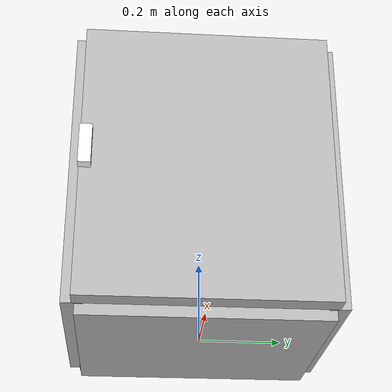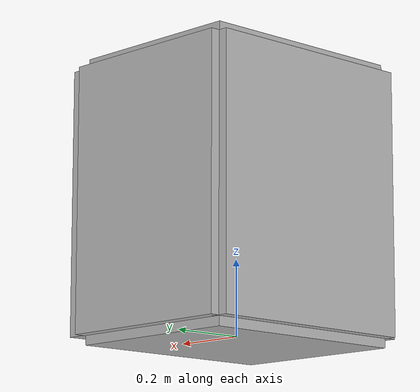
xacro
<?xml version="1.0"?>
<robot name="fridge" xmlns:xacro="http://wiki.ros.org/xacro">

<xacro:property name="length" value="0.5"/>
<xacro:property name="width" value="0.6"/>
<xacro:property name="height" value="0.7"/>
<xacro:property name="wall_thickness" value="0.05"/>

<xacro:property name="handle_length" value="0.06"/>
<xacro:property name="handle_width" value="0.03"/>
<xacro:property name="handle_height" value="0.1"/>
<xacro:property name="handle_thickness" value="0.025"/>

<xacro:include filename="$(find popcanbot_description)/urdf/util.xacro"/>

  <link name="fridge_base_link"/>
  <xacro:block name="fridge_bottom" length="${length * 0.98}"
      width="${width * 0.98}" height="${wall_thickness}" mass="5.0"
      r="0.7" g="0.7" b="0.7"/>
  <joint name="bottom_joint" type="fixed">
    <parent link="fridge_base_link"/>
    <child link="fridge_bottom"/>
    <origin xyz="0 0 0" rpy="0 0 0"/>
  </joint>

  <xacro:block name="fridge_back" length="${wall_thickness}"
      width="${width}" height="${height}" mass="5.0"
      r="0.7" g="0.7" b="0.7"/>
  <joint name="back_joint" type="fixed">
    <parent link="fridge_bottom"/>
    <child link="fridge_back"/>
    <origin xyz="${-length/2} 0 ${height/2}" rpy="0 0 0"/>
  </joint>

  <xacro:block name="fridge_left" length="${length}"
      width="${wall_thickness}" height="${height}" mass="5.0"
      r="0.7" g="0.7" b="0.7"/>
  <joint name="left_joint" type="fixed">
    <parent link="fridge_bottom"/>
    <child link="fridge_left"/>
    <origin xyz="0 ${width/2} ${height/2}" rpy="0 0 0"/>
  </joint>

  <xacro:block name="fridge_right" length="${length}"
      width="${wall_thickness}" height="${height}" mass="5.0"
      r="0.7" g="0.7" b="0.7"/>
  <joint name="right_joint" type="fixed">
    <parent link="fridge_bottom"/>
    <child link="fridge_right"/>
    <origin xyz="0 ${-width/2} ${height/2}" rpy="0 0 0"/>
  </joint>

  <xacro:block name="fridge_shelf" length="${length * 0.98}"
      width="${width * 0.98}" height="${wall_thickness * 0.9}" mass="5.0"
      r="0.7" g="0.7" b="0.7"/>
  <joint name="shelf_joint" type="fixed">
    <parent link="fridge_base_link"/>
    <child link="fridge_shelf"/>
    <origin xyz="0 0 ${height/2}" rpy="0 0 0"/>
  </joint>

  <xacro:block name="fridge_top" length="${length * 0.98}"
      width="${width * 0.98}" height="${wall_thickness}" mass="5.0"
      r="0.7" g="0.7" b="0.7"/>
  <joint name="top_joint" type="fixed">
    <parent link="fridge_base_link"/>
    <child link="fridge_top"/>
    <origin xyz="0 0 ${height}" rpy="0 0 0"/>
  </joint>

  <xacro:block name="fridge_door" length="${wall_thickness}"
      width="${width}" height="${height}" mass="5.0"
      r="0.7" g="0.7" b="0.7"
      y="${-width/2}" x="${wall_thickness/2}"/>
  <joint name="door_joint" type="revolute">
    <parent link="fridge_bottom"/>
    <child link="fridge_door"/>
    <!-- tilt the door very slightly so it doesn't fall open  -->
    <origin xyz="${length/2} ${width/2} ${height/2}" rpy="0 -0.001 0"/>
    <dynamics damping="0.1" friction="0.1"/>
    <axis xyz="0 0 1"/>
    <limit effort="10.0" upper="2.5" lower="0" velocity="0.1"/>
  </joint>

  <xacro:block name="handle_front" length="${handle_thickness}"
      width="${handle_width}" height="${handle_height}" mass="0.1"
      r="1.0" g="1.0" b="1.0"/>
  <joint name="handle_front_joint" type="fixed">
    <parent link="fridge_door"/>
    <child link="handle_front"/>
    <origin xyz="${handle_length + wall_thickness/2} ${-width + handle_width/2} 0" rpy="0 0 0"/>
  </joint>

</robot>

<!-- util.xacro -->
<robot name="util" xmlns:xacro="http://wiki.ros.org/xacro">

<!-- don't use macro names that are the same as other key names
  like 'box', 'cylinder', etc. otherwise get Invalid parameter "size"
-->
<xacro:macro name="block" params="name length width height mass
    x:=0 y:=0 z:=0
    r:=0.5 b:=0.5 g:=0.5
    mu:=0.0 kp:=1000.0 kd:=1.0">
  <link name="${name}">
     <visual>
      <origin xyz="${x} ${y} ${z}" rpy="0 0 0"/>
      <geometry>
        <box size="${length} ${width} ${height}"/>
      </geometry>
      <material name="${name}_gray">
        <color rgba="${r} ${g} ${b} 1"/>
      </material>
    </visual>
    <collision>
      <origin xyz="${x} ${y} ${z}" rpy="0 0 0"/>
      <geometry>
        <box size="${length} ${width} ${height}"/>
      </geometry>
      <contact_coefficients mu="${mu}" kp="${kp}" kd="${kd}"/>
    </collision>
    <inertial>
      <origin xyz="${x} ${y} ${z}" rpy="0 0 0"/>
      <mass value="${mass}"/>
      <inertia
          ixx="${mass / 12.0 * (width * width + height * height)}" ixy="0.0" ixz="0.0"
          iyy="${mass / 12.0 * (length * length + height * height)}" iyz="0.0"
          izz="${mass / 12.0 * (length * length + width * width)}" />
    </inertial>
  </link>
</xacro:macro>

<!-- a wheel that rotates around the y axis, rolls forward toward the x axis -->
<!--origin xyz="${length/2} ${width/2} ${height/2}" /-->
<xacro:macro name="wheel" params="name width radius mass
    r:=0.5 b:=0.5 g:=0.5
    mu:=0.0 kp:=1000.0 kd:=1.0">
  <link name="${name}">
    <visual>
      <origin xyz="0 0 0" rpy="${pi/2} 0 0" />
      <geometry>
        <cylinder length="${width}" radius="${radius}"/>
      </geometry>
      <material name="${name}_black">
        <color rgba="${r} ${g} ${b} 1"/>
      </material>
    </visual>
    <collision>
      <origin xyz="0 0 0" rpy="${pi/2} 0 0" />
      <geometry>
        <cylinder length="${width}" radius="${radius}"/>
      </geometry>
      <contact_coefficients mu="${mu}" kp="${kp}" kd="${kd}"/>
    </collision>
    <inertial>
      <origin xyz="0 0 0" rpy="${pi/2} 0 0" />
      <mass value="${mass}"/>
      <inertia
          ixx="${mass / 12.0 * (3 * radius * radius + width * width)}" ixy="0.0" ixz="0.0"
          iyy="${mass / 12.0 * (3 * radius * radius + width * width)}" iyz="0.0"
          izz="${mass / 2.0 * (radius * radius)}"/>
    </inertial>
  </link>
  <gazebo reference="${name}">
    <!-- this doesn't work, how to specify rgb color for gazebo? -->
    <!--color rgba="${r} ${g} ${b} 1.0"/-->
  </gazebo>
</xacro:macro>

<xacro:macro name="generic_wheel" params="name parent radius width
    x:=0 y:=0 z:=0
    r:=0.6 g:=0.6 b:=0.6
    y_axis:=1 mass:=0.2 use_tran:=true
    mu1:=200 mu2:=100">

  <xacro:wheel name="${name}" width="${width}" radius="${radius}" mass="${mass}"
      r="1.0" g="1.0" b="1.0"/>
  <joint name="${name}_joint" type="continuous">
    <parent link="${parent}"/>
    <child link="${name}"/>
    <origin xyz="${x} ${y} ${z}" rpy="0 0 0"/>
    <axis xyz="0 ${y_axis} 0"/>
    <limit effort="100.0" velocity="0.5"/>
  </joint>

  <xacro:if value="${use_tran}">
  <transmission name="${name}_tran">
    <type>transmission_interface/SimpleTransmission</type>
    <joint name="${name}_joint">
      <hardwareInterface>EffortJointInterface</hardwareInterface>
    </joint>
    <actuator name="${name}_motor">
      <hardwareInterface>EffortJointInterface</hardwareInterface>
      <mechanicalReduction>1</mechanicalReduction>
    </actuator>
  </transmission>
  </xacro:if>

  <gazebo reference="${name}">
    <mu1>${mu1}</mu1>
    <mu2>${mu2}</mu2>
    <kp value="10000000.0"/>
    <kd value="1.0"/>
  </gazebo>
</xacro:macro>  <!-- generic wheel -->

</robot>
